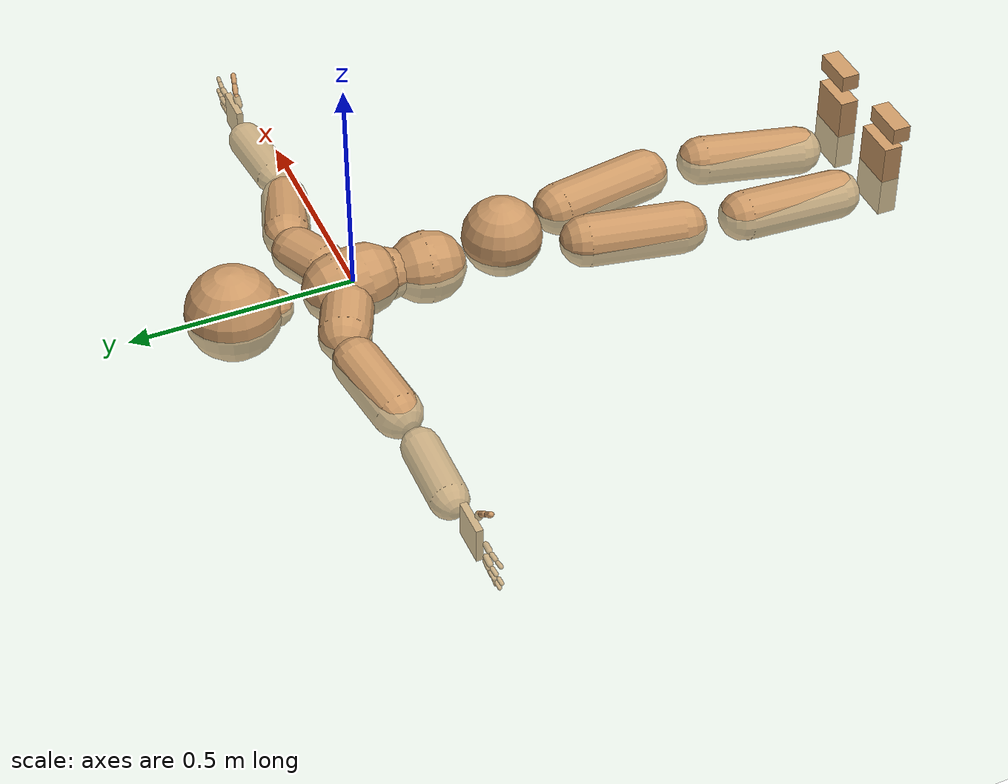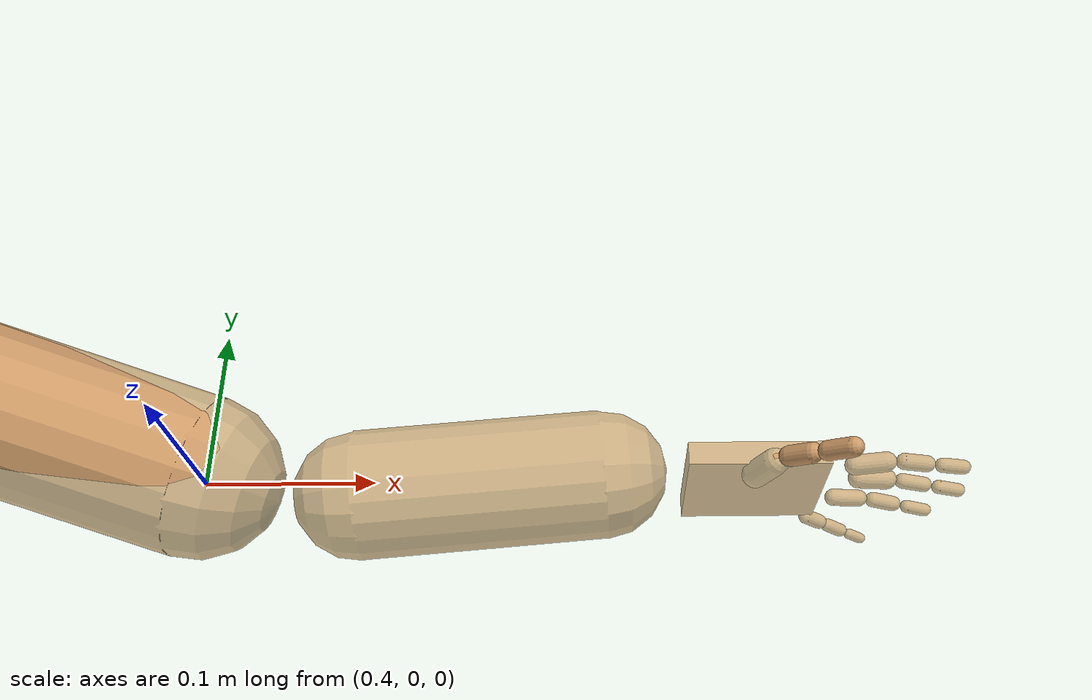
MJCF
<?xml version='1.0' encoding='utf-8'?>
<mujoco model="smplx_mapped_s89">
  <compiler coordinate="local" />
  <default>
    <joint damping="0.0" armature="0.01" stiffness="0.0" limited="true" />
    <geom conaffinity="1" condim="3" contype="7" margin="0.001" rgba="0.8 0.6 .4 1" />
  </default>
  <asset>
    <texture type="skybox" builtin="gradient" rgb1=".4 .5 .6" rgb2="0 0 0" width="100" height="100" />
    <texture builtin="flat" height="1278" mark="cross" markrgb="1 1 1" name="texgeom" random="0.01" rgb1="0.8 0.6 0.4" rgb2="0.8 0.6 0.4" type="cube" width="127" />
    <texture builtin="checker" height="100" name="texplane" rgb1="0 0 0" rgb2="0.8 0.8 0.8" type="2d" width="100" />
    <material name="MatPlane" reflectance="0.5" shininess="1" specular="1" texrepeat="60 60" texture="texplane" />
    <material name="geom" texture="texgeom" texuniform="true" />
  </asset>
  <worldbody>
    <light cutoff="100" diffuse="1 1 1" dir="-0 0 -1.3" directional="true" exponent="1" pos="0 0 1.3" specular=".1 .1 .1" />
    <geom conaffinity="1" condim="3" name="floor" pos="0 0 0" rgba="0.8 0.9 0.8 1" size="100 100 .2" type="plane" material="MatPlane" />
    <body name="Pelvis" pos="0.0009 -0.3469 0.0124">
      <freejoint name="Pelvis" />
      <geom type="sphere" contype="1" conaffinity="1" density="4629.6296296296305" size="0.09" pos="0.0000 0.0000 0.0000" name="Pelvis" />
      <body name="L_Hip" pos="0.0527 -0.0907 -0.0253">
        <joint name="L_Hip_x" type="hinge" pos="0 0 0" axis="1 0 0" stiffness="800" damping="80" armature="0.02" range="-180.00 180.00" />
        <joint name="L_Hip_y" type="hinge" pos="0 0 0" axis="0 1 0" stiffness="800" damping="80" armature="0.02" range="-180.00 180.00" />
        <joint name="L_Hip_z" type="hinge" pos="0 0 0" axis="0 0 1" stiffness="800" damping="80" armature="0.02" range="-180.00 180.00" />
        <geom type="capsule" contype="1" conaffinity="1" density="2040.816327" fromto="0.0136 -0.0751 -0.0012 0.0545 -0.3005 -0.0049" size="0.059" />
        <body name="L_Knee" pos="0.0682 -0.3756 -0.0061">
          <joint name="L_Knee_x" type="hinge" pos="0 0 0" axis="1 0 0" stiffness="800" damping="80" armature="0.02" range="-180.00 180.00" />
          <joint name="L_Knee_y" type="hinge" pos="0 0 0" axis="0 1 0" stiffness="800" damping="80" armature="0.02" range="-180.00 180.00" />
          <joint name="L_Knee_z" type="hinge" pos="0 0 0" axis="0 0 1" stiffness="800" damping="80" armature="0.02" range="-180.00 180.00" />
          <geom type="capsule" contype="1" conaffinity="1" density="1234.567901" fromto="-0.0089 -0.0778 -0.0077 -0.0355 -0.3114 -0.0307" size="0.0564" />
          <body name="L_Ankle" pos="-0.0443 -0.3892 -0.0384">
            <joint name="L_Ankle_x" type="hinge" pos="0 0 0" axis="1 0 0" stiffness="800" damping="80" armature="0.02" range="-180.00 180.00" />
            <joint name="L_Ankle_y" type="hinge" pos="0 0 0" axis="0 1 0" stiffness="800" damping="80" armature="0.02" range="-180.00 180.00" />
            <joint name="L_Ankle_z" type="hinge" pos="0 0 0" axis="0 0 1" stiffness="800" damping="80" armature="0.02" range="-180.00 180.00" />
            <geom type="box" contype="1" conaffinity="1" density="1000" pos="0.0115 -0.0234 0.0566" size="0.0502 0.0216 0.0909" quat="1.0000 0.0000 0.0000 0.0000" />
            <body name="L_Toe" pos="0.0420 -0.0555 0.1292">
              <joint name="L_Toe_x" type="hinge" pos="0 0 0" axis="1 0 0" stiffness="500" damping="50" armature="0.02" range="-180.00 180.00" />
              <joint name="L_Toe_y" type="hinge" pos="0 0 0" axis="0 1 0" stiffness="500" damping="50" armature="0.02" range="-180.00 180.00" />
              <joint name="L_Toe_z" type="hinge" pos="0 0 0" axis="0 0 1" stiffness="500" damping="50" armature="0.02" range="-180.00 180.00" />
              <geom type="box" contype="1" conaffinity="1" density="1000" pos="-0.0115 0.0227 0.0576" size="0.0493 0.0209 0.0194" quat="1.0000 0.0000 0.0000 0.0000" />
            </body>
          </body>
        </body>
      </body>
      <body name="R_Hip" pos="-0.0540 -0.1010 -0.0186">
        <joint name="R_Hip_x" type="hinge" pos="0 0 0" axis="1 0 0" stiffness="800" damping="80" armature="0.02" range="-180.00 180.00" />
        <joint name="R_Hip_y" type="hinge" pos="0 0 0" axis="0 1 0" stiffness="800" damping="80" armature="0.02" range="-180.00 180.00" />
        <joint name="R_Hip_z" type="hinge" pos="0 0 0" axis="0 0 1" stiffness="800" damping="80" armature="0.02" range="-180.00 180.00" />
        <geom type="capsule" contype="1" conaffinity="1" density="2040.816327" fromto="-0.0105 -0.0719 -0.0027 -0.0420 -0.2877 -0.0108" size="0.0588" />
        <body name="R_Knee" pos="-0.0525 -0.3596 -0.0135">
          <joint name="R_Knee_x" type="hinge" pos="0 0 0" axis="1 0 0" stiffness="800" damping="80" armature="0.02" range="-180.00 180.00" />
          <joint name="R_Knee_y" type="hinge" pos="0 0 0" axis="0 1 0" stiffness="800" damping="80" armature="0.02" range="-180.00 180.00" />
          <joint name="R_Knee_z" type="hinge" pos="0 0 0" axis="0 0 1" stiffness="800" damping="80" armature="0.02" range="-180.00 180.00" />
          <geom type="capsule" contype="1" conaffinity="1" density="1234.567901" fromto="0.0035 -0.0804 -0.0075 0.0141 -0.3214 -0.0300" size="0.0564" />
          <body name="R_Ankle" pos="0.0176 -0.4018 -0.0375">
            <joint name="R_Ankle_x" type="hinge" pos="0 0 0" axis="1 0 0" stiffness="800" damping="80" armature="0.02" range="-180.00 180.00" />
            <joint name="R_Ankle_y" type="hinge" pos="0 0 0" axis="0 1 0" stiffness="800" damping="80" armature="0.02" range="-180.00 180.00" />
            <joint name="R_Ankle_z" type="hinge" pos="0 0 0" axis="0 0 1" stiffness="800" damping="80" armature="0.02" range="-180.00 180.00" />
            <geom type="box" contype="1" conaffinity="1" density="1000" pos="-0.0091 -0.0250 0.0535" size="0.0502 0.0216 0.0909" quat="1.0000 0.0000 0.0000 0.0000" />
            <body name="R_Toe" pos="-0.0337 -0.0551 0.1356">
              <joint name="R_Toe_x" type="hinge" pos="0 0 0" axis="1 0 0" stiffness="500" damping="50" armature="0.02" range="-180.00 180.00" />
              <joint name="R_Toe_y" type="hinge" pos="0 0 0" axis="0 1 0" stiffness="500" damping="50" armature="0.02" range="-180.00 180.00" />
              <joint name="R_Toe_z" type="hinge" pos="0 0 0" axis="0 0 1" stiffness="500" damping="50" armature="0.02" range="-180.00 180.00" />
              <geom type="box" contype="1" conaffinity="1" density="1000" pos="0.0091 0.0243 0.0545" size="0.0493 0.0209 0.0194" quat="1.0000 0.0000 0.0000 0.0000" />
            </body>
          </body>
        </body>
      </body>
      <body name="Torso" pos="-0.0012 0.1041 -0.0338">
        <joint name="Torso_x" type="hinge" pos="0 0 0" axis="1 0 0" stiffness="1000" damping="100" armature="0.02" range="-180.00 180.00" />
        <joint name="Torso_y" type="hinge" pos="0 0 0" axis="0 1 0" stiffness="1000" damping="100" armature="0.02" range="-180.00 180.00" />
        <joint name="Torso_z" type="hinge" pos="0 0 0" axis="0 0 1" stiffness="1000" damping="100" armature="0.02" range="-180.00 180.00" />
        <geom type="capsule" contype="1" conaffinity="1" density="1100" fromto="0.0033 0.0645 0.0023 0.0041 0.0789 0.0028" size="0.08" />
        <body name="Spine" pos="0.0074 0.1434 0.0052">
          <joint name="Spine_x" type="hinge" pos="0 0 0" axis="1 0 0" stiffness="1000" damping="100" armature="0.02" range="-180.00 180.00" />
          <joint name="Spine_y" type="hinge" pos="0 0 0" axis="0 1 0" stiffness="1000" damping="100" armature="0.02" range="-180.00 180.00" />
          <joint name="Spine_z" type="hinge" pos="0 0 0" axis="0 0 1" stiffness="1000" damping="100" armature="0.02" range="-180.00 180.00" />
          <geom type="capsule" contype="1" conaffinity="1" density="1100" fromto="-0.0031 0.0246 0.0079 -0.0038 0.0301 0.0096" size="0.06" />
          <body name="Chest" pos="-0.0069 0.0547 0.0175">
            <joint name="Chest_x" type="hinge" pos="0 0 0" axis="1 0 0" stiffness="1000" damping="100" armature="0.02" range="-180.00 180.00" />
            <joint name="Chest_y" type="hinge" pos="0 0 0" axis="0 1 0" stiffness="1000" damping="100" armature="0.02" range="-180.00 180.00" />
            <joint name="Chest_z" type="hinge" pos="0 0 0" axis="0 0 1" stiffness="1000" damping="100" armature="0.02" range="-180.00 180.00" />
            <geom type="capsule" contype="1" conaffinity="1" density="1100" fromto="-0.0007 0.0200 -0.0022 -0.0027 0.0800 -0.0086" size="0.08" />
            <body name="Neck" pos="-0.0084 0.1556 -0.0218">
              <joint name="Neck_x" type="hinge" pos="0 0 0" axis="1 0 0" stiffness="500" damping="50" armature="0.02" range="-180.00 180.00" />
              <joint name="Neck_y" type="hinge" pos="0 0 0" axis="0 1 0" stiffness="500" damping="50" armature="0.02" range="-180.00 180.00" />
              <joint name="Neck_z" type="hinge" pos="0 0 0" axis="0 0 1" stiffness="500" damping="50" armature="0.02" range="-180.00 180.00" />
              <geom type="capsule" contype="1" conaffinity="1" density="1000" fromto="0.0102 0.0699 0.0054 0.0125 0.0855 0.0066" size="0.0437" />
              <body name="Head" pos="0.0227 0.1554 0.0119">
                <joint name="Head_x" type="hinge" pos="0 0 0" axis="1 0 0" stiffness="500" damping="50" armature="0.02" range="-180.00 180.00" />
                <joint name="Head_y" type="hinge" pos="0 0 0" axis="0 1 0" stiffness="500" damping="50" armature="0.02" range="-180.00 180.00" />
                <joint name="Head_z" type="hinge" pos="0 0 0" axis="0 0 1" stiffness="500" damping="50" armature="0.02" range="-180.00 180.00" />
                <geom type="sphere" contype="1" conaffinity="1" density="1000" size="0.1054" pos="0.0000 0.0000 0.0000" name="Head" />
              </body>
            </body>
            <body name="L_Thorax" pos="0.0418 0.0721 -0.0035">
              <joint name="L_Thorax_x" type="hinge" pos="0 0 0" axis="1 0 0" stiffness="500" damping="50" armature="0.02" range="-180.00 180.00" />
              <joint name="L_Thorax_y" type="hinge" pos="0 0 0" axis="0 1 0" stiffness="500" damping="50" armature="0.02" range="-180.00 180.00" />
              <joint name="L_Thorax_z" type="hinge" pos="0 0 0" axis="0 0 1" stiffness="500" damping="50" armature="0.02" range="-180.00 180.00" />
              <geom type="capsule" contype="1" conaffinity="1" density="1000" fromto="0.0276 0.0117 -0.0023 0.1104 0.0469 -0.0093" size="0.0564" />
              <body name="L_Shoulder" pos="0.1379 0.0587 -0.0116">
                <joint name="L_Shoulder_x" type="hinge" pos="0 0 0" axis="1 0 0" stiffness="500" damping="50" armature="0.02" range="-180.00 180.00" />
                <joint name="L_Shoulder_y" type="hinge" pos="0 0 0" axis="0 1 0" stiffness="500" damping="50" armature="0.02" range="-180.00 180.00" />
                <joint name="L_Shoulder_z" type="hinge" pos="0 0 0" axis="0 0 1" stiffness="500" damping="50" armature="0.02" range="-180.00 180.00" />
                <geom type="capsule" contype="1" conaffinity="1" density="1000" fromto="0.0493 -0.0149 -0.0081 0.1972 -0.0595 -0.0322" size="0.0533" />
                <body name="L_Elbow" pos="0.2466 -0.0744 -0.0403">
                  <joint name="L_Elbow_x" type="hinge" pos="0 0 0" axis="1 0 0" stiffness="500" damping="50" armature="0.02" range="-180.00 180.00" />
                  <joint name="L_Elbow_y" type="hinge" pos="0 0 0" axis="0 1 0" stiffness="500" damping="50" armature="0.02" range="-180.00 180.00" />
                  <joint name="L_Elbow_z" type="hinge" pos="0 0 0" axis="0 0 1" stiffness="500" damping="50" armature="0.02" range="-180.00 180.00" />
                  <geom type="capsule" contype="1" conaffinity="1" density="1000" fromto="0.0520 0.0046 -0.0005 0.2079 0.0185 -0.0018" size="0.0418" />
                  <body name="L_Wrist" pos="0.2599 0.0231 -0.0023">
                    <joint name="L_Wrist_x" type="hinge" pos="0 0 0" axis="1 0 0" stiffness="300" damping="30" armature="0.02" range="-180.0000 180.0000" />
                    <joint name="L_Wrist_y" type="hinge" pos="0 0 0" axis="0 1 0" stiffness="300" damping="30" armature="0.02" range="-180.0000 180.0000" />
                    <joint name="L_Wrist_z" type="hinge" pos="0 0 0" axis="0 0 1" stiffness="300" damping="30" armature="0.02" range="-180.0000 180.0000" />
                    <geom type="box" contype="1" conaffinity="1" density="1000" pos="0.0456 -0.0084 -0.0022" size="0.0444 0.0076 0.0414" quat="1.0000 0.0000 0.0000 0.0000" />
                    <body name="L_Index1" pos="0.1009 -0.0092 0.0204">
                      <joint name="L_Index1_x" type="hinge" pos="0 0 0" axis="1 0 0" stiffness="100" damping="10" armature="0.02" range="-5.6250 5.6250" />
                      <joint name="L_Index1_y" type="hinge" pos="0 0 0" axis="0 1 0" stiffness="100" damping="10" armature="0.02" range="-5.6250 5.6250" />
                      <joint name="L_Index1_z" type="hinge" pos="0 0 0" axis="0 0 1" stiffness="100" damping="10" armature="0.02" range="-55.6250 55.6250" />
                      <geom type="capsule" contype="1" conaffinity="1" density="1000" fromto="0.0065 0.0003 0.0007 0.0261 0.0013 0.0028" size="0.0065" />
                      <body name="L_Index2" pos="0.0327 0.0016 0.0035">
                        <joint name="L_Index2_x" type="hinge" pos="0 0 0" axis="1 0 0" stiffness="100" damping="10" armature="0.02" range="-5.6250 5.6250" />
                        <joint name="L_Index2_y" type="hinge" pos="0 0 0" axis="0 1 0" stiffness="100" damping="10" armature="0.02" range="-5.6250 5.6250" />
                        <joint name="L_Index2_z" type="hinge" pos="0 0 0" axis="0 0 1" stiffness="100" damping="10" armature="0.02" range="-55.6250 55.6250" />
                        <geom type="capsule" contype="1" conaffinity="1" density="1000" fromto="0.0046 -0.0005 -0.0000 0.0185 -0.0021 -0.0002" size="0.0053" />
                        <body name="L_Index3" pos="0.0231 -0.0026 -0.0002">
                          <joint name="L_Index3_x" type="hinge" pos="0 0 0" axis="1 0 0" stiffness="100" damping="10" armature="0.02" range="-5.6250 5.6250" />
                          <joint name="L_Index3_y" type="hinge" pos="0 0 0" axis="0 1 0" stiffness="100" damping="10" armature="0.02" range="-5.6250 5.6250" />
                          <joint name="L_Index3_z" type="hinge" pos="0 0 0" axis="0 0 1" stiffness="100" damping="10" armature="0.02" range="-90.0000 5.6250" />
                          <geom type="capsule" contype="1" conaffinity="1" density="1000" fromto="0.0052 -0.0006 -0.0001 0.0179 -0.0020 -0.0002" size="0.0047" />
                        </body>
                      </body>
                    </body>
                    <body name="L_Middle1" pos="0.1088 -0.0065 -0.0037">
                      <joint name="L_Middle1_x" type="hinge" pos="0 0 0" axis="1 0 0" stiffness="100" damping="10" armature="0.02" range="-5.6250 5.6250" />
                      <joint name="L_Middle1_y" type="hinge" pos="0 0 0" axis="0 1 0" stiffness="100" damping="10" armature="0.02" range="-5.6250 5.6250" />
                      <joint name="L_Middle1_z" type="hinge" pos="0 0 0" axis="0 0 1" stiffness="100" damping="10" armature="0.02" range="-55.6250 55.6250" />
                      <geom type="capsule" contype="1" conaffinity="1" density="1000" fromto="0.0062 0.0001 -0.0009 0.0249 0.0003 -0.0034" size="0.0067" />
                      <body name="L_Middle2" pos="0.0312 0.0003 -0.0043">
                        <joint name="L_Middle2_x" type="hinge" pos="0 0 0" axis="1 0 0" stiffness="100" damping="10" armature="0.02" range="-5.6250 5.6250" />
                        <joint name="L_Middle2_y" type="hinge" pos="0 0 0" axis="0 1 0" stiffness="100" damping="10" armature="0.02" range="-5.6250 5.6250" />
                        <joint name="L_Middle2_z" type="hinge" pos="0 0 0" axis="0 0 1" stiffness="100" damping="10" armature="0.02" range="-55.6250 55.6250" />
                        <geom type="capsule" contype="1" conaffinity="1" density="1000" fromto="0.0048 -0.0005 -0.0009 0.0191 -0.0020 -0.0034" size="0.0050" />
                        <body name="L_Middle3" pos="0.0239 -0.0025 -0.0043">
                          <joint name="L_Middle3_x" type="hinge" pos="0 0 0" axis="1 0 0" stiffness="100" damping="10" armature="0.02" range="-5.6250 5.6250" />
                          <joint name="L_Middle3_y" type="hinge" pos="0 0 0" axis="0 1 0" stiffness="100" damping="10" armature="0.02" range="-5.6250 5.6250" />
                          <joint name="L_Middle3_z" type="hinge" pos="0 0 0" axis="0 0 1" stiffness="100" damping="10" armature="0.02" range="-90.0000 5.6250" />
                          <geom type="capsule" contype="1" conaffinity="1" density="1000" fromto="0.0053 -0.0006 -0.0009 0.0186 -0.0019 -0.0033" size="0.0045" />
                        </body>
                      </body>
                    </body>
                    <body name="L_Pinky1" pos="0.0835 -0.0149 -0.0450">
                      <joint name="L_Pinky1_x" type="hinge" pos="0 0 0" axis="1 0 0" stiffness="100" damping="10" armature="0.02" range="-5.6250 5.6250" />
                      <joint name="L_Pinky1_y" type="hinge" pos="0 0 0" axis="0 1 0" stiffness="100" damping="10" armature="0.02" range="-5.6250 5.6250" />
                      <joint name="L_Pinky1_z" type="hinge" pos="0 0 0" axis="0 0 1" stiffness="100" damping="10" armature="0.02" range="-55.6250 55.6250" />
                      <geom type="capsule" contype="1" conaffinity="1" density="1000" fromto="0.0033 -0.0004 -0.0024 0.0133 -0.0014 -0.0094" size="0.0050" />
                      <body name="L_Pinky2" pos="0.0166 -0.0018 -0.0118">
                        <joint name="L_Pinky2_x" type="hinge" pos="0 0 0" axis="1 0 0" stiffness="100" damping="10" armature="0.02" range="-5.6250 5.6250" />
                        <joint name="L_Pinky2_y" type="hinge" pos="0 0 0" axis="0 1 0" stiffness="100" damping="10" armature="0.02" range="-5.6250 5.6250" />
                        <joint name="L_Pinky2_z" type="hinge" pos="0 0 0" axis="0 0 1" stiffness="100" damping="10" armature="0.02" range="-55.6250 55.6250" />
                        <geom type="capsule" contype="1" conaffinity="1" density="1000" fromto="0.0033 -0.0004 -0.0022 0.0131 -0.0016 -0.0088" size="0.0045" />
                        <body name="L_Pinky3" pos="0.0163 -0.0020 -0.0111">
                          <joint name="L_Pinky3_x" type="hinge" pos="0 0 0" axis="1 0 0" stiffness="100" damping="10" armature="0.02" range="-5.6250 5.6250" />
                          <joint name="L_Pinky3_y" type="hinge" pos="0 0 0" axis="0 1 0" stiffness="100" damping="10" armature="0.02" range="-5.6250 5.6250" />
                          <joint name="L_Pinky3_z" type="hinge" pos="0 0 0" axis="0 0 1" stiffness="100" damping="10" armature="0.02" range="-90.0000 5.6250" />
                          <geom type="capsule" contype="1" conaffinity="1" density="1000" fromto="0.0038 -0.0005 -0.0025 0.0126 -0.0015 -0.0085" size="0.0036" />
                        </body>
                      </body>
                    </body>
                    <body name="L_Ring1" pos="0.0968 -0.0094 -0.0278">
                      <joint name="L_Ring1_x" type="hinge" pos="0 0 0" axis="1 0 0" stiffness="100" damping="10" armature="0.02" range="-5.6250 5.6250" />
                      <joint name="L_Ring1_y" type="hinge" pos="0 0 0" axis="0 1 0" stiffness="100" damping="10" armature="0.02" range="-5.6250 5.6250" />
                      <joint name="L_Ring1_z" type="hinge" pos="0 0 0" axis="0 0 1" stiffness="100" damping="10" armature="0.02" range="-55.6250 55.6250" />
                      <geom type="capsule" contype="1" conaffinity="1" density="1000" fromto="0.0058 0.0001 -0.0010 0.0232 0.0005 -0.0039" size="0.0057" />
                      <body name="L_Ring2" pos="0.0289 0.0007 -0.0048">
                        <joint name="L_Ring2_x" type="hinge" pos="0 0 0" axis="1 0 0" stiffness="100" damping="10" armature="0.02" range="-5.6250 5.6250" />
                        <joint name="L_Ring2_y" type="hinge" pos="0 0 0" axis="0 1 0" stiffness="100" damping="10" armature="0.02" range="-5.6250 5.6250" />
                        <joint name="L_Ring2_z" type="hinge" pos="0 0 0" axis="0 0 1" stiffness="100" damping="10" armature="0.02" range="-55.6250 55.6250" />
                        <geom type="capsule" contype="1" conaffinity="1" density="1000" fromto="0.0047 -0.0004 -0.0013 0.0188 -0.0017 -0.0053" size="0.0051" />
                        <body name="L_Ring3" pos="0.0235 -0.0022 -0.0066">
                          <joint name="L_Ring3_x" type="hinge" pos="0 0 0" axis="1 0 0" stiffness="100" damping="10" armature="0.02" range="-5.6250 5.6250" />
                          <joint name="L_Ring3_y" type="hinge" pos="0 0 0" axis="0 1 0" stiffness="100" damping="10" armature="0.02" range="-5.6250 5.6250" />
                          <joint name="L_Ring3_z" type="hinge" pos="0 0 0" axis="0 0 1" stiffness="100" damping="10" armature="0.02" range="-90.0000 5.6250" />
                          <geom type="capsule" contype="1" conaffinity="1" density="1000" fromto="0.0053 -0.0005 -0.0015 0.0182 -0.0017 -0.0051" size="0.0043" />
                        </body>
                      </body>
                    </body>
                    <body name="L_Thumb1" pos="0.0392 -0.0200 0.0265">
                      <joint name="L_Thumb1_x" type="hinge" pos="0 0 0" axis="1 0 0" stiffness="100" damping="10" armature="0.02" range="-55.6250 55.6250" />
                      <joint name="L_Thumb1_y" type="hinge" pos="0 0 0" axis="0 1 0" stiffness="100" damping="10" armature="0.02" range="-55.6250 55.6250" />
                      <joint name="L_Thumb1_z" type="hinge" pos="0 0 0" axis="0 0 1" stiffness="100" damping="10" armature="0.02" range="-55.6250 55.6250" />
                      <geom type="capsule" contype="1" conaffinity="1" density="1000" fromto="0.0033 0.0003 0.0053 0.0133 0.0013 0.0212" size="0.0086" />
                      <body name="L_Thumb2" pos="0.0166 0.0017 0.0265">
                        <joint name="L_Thumb2_x" type="hinge" pos="0 0 0" axis="1 0 0" stiffness="100" damping="10" armature="0.02" range="-5.6250 5.6250" />
                        <joint name="L_Thumb2_y" type="hinge" pos="0 0 0" axis="0 1 0" stiffness="100" damping="10" armature="0.02" range="-5.6250 5.6250" />
                        <joint name="L_Thumb2_z" type="hinge" pos="0 0 0" axis="0 0 1" stiffness="100" damping="10" armature="0.02" range="-5.6250 5.6250" />
                        <geom type="capsule" contype="1" conaffinity="1" density="1000" fromto="0.0041 -0.0009 0.0033 0.0162 -0.0036 0.0133" size="0.0065" />
                        <body name="L_Thumb3" pos="0.0203 -0.0045 0.0166">
                          <joint name="L_Thumb3_x" type="hinge" pos="0 0 0" axis="1 0 0" stiffness="100" damping="10" armature="0.02" range="-5.6250 5.6250" />
                          <joint name="L_Thumb3_y" type="hinge" pos="0 0 0" axis="0 1 0" stiffness="100" damping="10" armature="0.02" range="-5.6250 5.6250" />
                          <joint name="L_Thumb3_z" type="hinge" pos="0 0 0" axis="0 0 1" stiffness="100" damping="10" armature="0.02" range="-90.0000 5.6250" />
                          <geom type="capsule" contype="1" conaffinity="1" density="1000" fromto="0.0038 -0.0009 0.0031 0.0165 -0.0037 0.0135" size="0.0062" />
                        </body>
                      </body>
                    </body>
                  </body>
                </body>
              </body>
            </body>
            <body name="R_Thorax" pos="-0.0435 0.0722 -0.0069">
              <joint name="R_Thorax_x" type="hinge" pos="0 0 0" axis="1 0 0" stiffness="500" damping="50" armature="0.02" range="-180.00 180.00" />
              <joint name="R_Thorax_y" type="hinge" pos="0 0 0" axis="0 1 0" stiffness="500" damping="50" armature="0.02" range="-180.00 180.00" />
              <joint name="R_Thorax_z" type="hinge" pos="0 0 0" axis="0 0 1" stiffness="500" damping="50" armature="0.02" range="-180.00 180.00" />
              <geom type="capsule" contype="1" conaffinity="1" density="1000" fromto="-0.0256 0.0115 -0.0015 -0.1023 0.0461 -0.0060" size="0.0576" />
              <body name="R_Shoulder" pos="-0.1279 0.0576 -0.0075">
                <joint name="R_Shoulder_x" type="hinge" pos="0 0 0" axis="1 0 0" stiffness="500" damping="50" armature="0.02" range="-180.00 180.00" />
                <joint name="R_Shoulder_y" type="hinge" pos="0 0 0" axis="0 1 0" stiffness="500" damping="50" armature="0.02" range="-180.00 180.00" />
                <joint name="R_Shoulder_z" type="hinge" pos="0 0 0" axis="0 0 1" stiffness="500" damping="50" armature="0.02" range="-180.00 180.00" />
                <geom type="capsule" contype="1" conaffinity="1" density="1000" fromto="-0.0527 -0.0093 -0.0060 -0.2108 -0.0372 -0.0240" size="0.0538" />
                <body name="R_Elbow" pos="-0.2635 -0.0465 -0.0300">
                  <joint name="R_Elbow_x" type="hinge" pos="0 0 0" axis="1 0 0" stiffness="500" damping="50" armature="0.02" range="-180.00 180.00" />
                  <joint name="R_Elbow_y" type="hinge" pos="0 0 0" axis="0 1 0" stiffness="500" damping="50" armature="0.02" range="-180.00 180.00" />
                  <joint name="R_Elbow_z" type="hinge" pos="0 0 0" axis="0 0 1" stiffness="500" damping="50" armature="0.02" range="-180.00 180.00" />
                  <geom type="capsule" contype="1" conaffinity="1" density="1000" fromto="-0.0504 -0.0001 -0.0025 -0.2016 -0.0003 -0.0099" size="0.042" />
                  <body name="R_Wrist" pos="-0.2520 -0.0004 -0.0124">
                    <joint name="R_Wrist_x" type="hinge" pos="0 0 0" axis="1 0 0" stiffness="300" damping="30" armature="0.02" range="-180.0000 180.0000" />
                    <joint name="R_Wrist_y" type="hinge" pos="0 0 0" axis="0 1 0" stiffness="300" damping="30" armature="0.02" range="-180.0000 180.0000" />
                    <joint name="R_Wrist_z" type="hinge" pos="0 0 0" axis="0 0 1" stiffness="300" damping="30" armature="0.02" range="-180.0000 180.0000" />
                    <geom type="box" contype="1" conaffinity="1" density="1000" pos="-0.0449 -0.0080 -0.0014" size="0.0416 0.0078 0.0414" quat="1.0000 0.0000 0.0000 0.0000" />
                    <body name="R_Index1" pos="-0.1005 -0.0126 0.0195">
                      <joint name="R_Index1_x" type="hinge" pos="0 0 0" axis="1 0 0" stiffness="100" damping="10" armature="0.02" range="-5.6250 5.6250" />
                      <joint name="R_Index1_y" type="hinge" pos="0 0 0" axis="0 1 0" stiffness="100" damping="10" armature="0.02" range="-5.6250 5.6250" />
                      <joint name="R_Index1_z" type="hinge" pos="0 0 0" axis="0 0 1" stiffness="100" damping="10" armature="0.02" range="-55.6250 55.6250" />
                      <geom type="capsule" contype="1" conaffinity="1" density="1000" fromto="-0.0065 0.0003 0.0007 -0.0261 0.0013 0.0028" size="0.0065" />
                      <body name="R_Index2" pos="-0.0327 0.0016 0.0035">
                        <joint name="R_Index2_x" type="hinge" pos="0 0 0" axis="1 0 0" stiffness="100" damping="10" armature="0.02" range="-5.6250 5.6250" />
                        <joint name="R_Index2_y" type="hinge" pos="0 0 0" axis="0 1 0" stiffness="100" damping="10" armature="0.02" range="-5.6250 5.6250" />
                        <joint name="R_Index2_z" type="hinge" pos="0 0 0" axis="0 0 1" stiffness="100" damping="10" armature="0.02" range="-55.6250 55.6250" />
                        <geom type="capsule" contype="1" conaffinity="1" density="1000" fromto="-0.0046 -0.0005 -0.0001 -0.0185 -0.0021 -0.0002" size="0.0053" />
                        <body name="R_Index3" pos="-0.0231 -0.0026 -0.0003">
                          <joint name="R_Index3_x" type="hinge" pos="0 0 0" axis="1 0 0" stiffness="100" damping="10" armature="0.02" range="-5.6250 5.6250" />
                          <joint name="R_Index3_y" type="hinge" pos="0 0 0" axis="0 1 0" stiffness="100" damping="10" armature="0.02" range="-5.6250 5.6250" />
                          <joint name="R_Index3_z" type="hinge" pos="0 0 0" axis="0 0 1" stiffness="100" damping="10" armature="0.02" range="-5.6250 90.0000" />
                          <geom type="capsule" contype="1" conaffinity="1" density="1000" fromto="-0.0056 -0.0006 -0.0001 -0.0175 -0.0020 -0.0002" size="0.0048" />
                        </body>
                      </body>
                    </body>
                    <body name="R_Middle1" pos="-0.1084 -0.0099 -0.0046">
                      <joint name="R_Middle1_x" type="hinge" pos="0 0 0" axis="1 0 0" stiffness="100" damping="10" armature="0.02" range="-5.6250 5.6250" />
                      <joint name="R_Middle1_y" type="hinge" pos="0 0 0" axis="0 1 0" stiffness="100" damping="10" armature="0.02" range="-5.6250 5.6250" />
                      <joint name="R_Middle1_z" type="hinge" pos="0 0 0" axis="0 0 1" stiffness="100" damping="10" armature="0.02" range="-55.6250 55.6250" />
                      <geom type="capsule" contype="1" conaffinity="1" density="1000" fromto="-0.0062 0.0001 -0.0009 -0.0249 0.0003 -0.0034" size="0.0067" />
                      <body name="R_Middle2" pos="-0.0312 0.0003 -0.0043">
                        <joint name="R_Middle2_x" type="hinge" pos="0 0 0" axis="1 0 0" stiffness="100" damping="10" armature="0.02" range="-5.6250 5.6250" />
                        <joint name="R_Middle2_y" type="hinge" pos="0 0 0" axis="0 1 0" stiffness="100" damping="10" armature="0.02" range="-5.6250 5.6250" />
                        <joint name="R_Middle2_z" type="hinge" pos="0 0 0" axis="0 0 1" stiffness="100" damping="10" armature="0.02" range="-55.6250 55.6250" />
                        <geom type="capsule" contype="1" conaffinity="1" density="1000" fromto="-0.0048 -0.0005 -0.0009 -0.0191 -0.0020 -0.0034" size="0.0050" />
                        <body name="R_Middle3" pos="-0.0239 -0.0025 -0.0043">
                          <joint name="R_Middle3_x" type="hinge" pos="0 0 0" axis="1 0 0" stiffness="100" damping="10" armature="0.02" range="-5.6250 5.6250" />
                          <joint name="R_Middle3_y" type="hinge" pos="0 0 0" axis="0 1 0" stiffness="100" damping="10" armature="0.02" range="-5.6250 5.6250" />
                          <joint name="R_Middle3_z" type="hinge" pos="0 0 0" axis="0 0 1" stiffness="100" damping="10" armature="0.02" range="-5.6250 90.0000" />
                          <geom type="capsule" contype="1" conaffinity="1" density="1000" fromto="-0.0056 -0.0006 -0.0010 -0.0182 -0.0019 -0.0033" size="0.0045" />
                        </body>
                      </body>
                    </body>
                    <body name="R_Pinky1" pos="-0.0832 -0.0184 -0.0460">
                      <joint name="R_Pinky1_x" type="hinge" pos="0 0 0" axis="1 0 0" stiffness="100" damping="10" armature="0.02" range="-5.6250 5.6250" />
                      <joint name="R_Pinky1_y" type="hinge" pos="0 0 0" axis="0 1 0" stiffness="100" damping="10" armature="0.02" range="-5.6250 5.6250" />
                      <joint name="R_Pinky1_z" type="hinge" pos="0 0 0" axis="0 0 1" stiffness="100" damping="10" armature="0.02" range="-55.6250 55.6250" />
                      <geom type="capsule" contype="1" conaffinity="1" density="1000" fromto="-0.0033 -0.0004 -0.0024 -0.0133 -0.0014 -0.0094" size="0.0050" />
                      <body name="R_Pinky2" pos="-0.0166 -0.0018 -0.0118">
                        <joint name="R_Pinky2_x" type="hinge" pos="0 0 0" axis="1 0 0" stiffness="100" damping="10" armature="0.02" range="-5.6250 5.6250" />
                        <joint name="R_Pinky2_y" type="hinge" pos="0 0 0" axis="0 1 0" stiffness="100" damping="10" armature="0.02" range="-5.6250 5.6250" />
                        <joint name="R_Pinky2_z" type="hinge" pos="0 0 0" axis="0 0 1" stiffness="100" damping="10" armature="0.02" range="-55.6250 55.6250" />
                        <geom type="capsule" contype="1" conaffinity="1" density="1000" fromto="-0.0033 -0.0004 -0.0022 -0.0131 -0.0016 -0.0088" size="0.0045" />
                        <body name="R_Pinky3" pos="-0.0163 -0.0020 -0.0111">
                          <joint name="R_Pinky3_x" type="hinge" pos="0 0 0" axis="1 0 0" stiffness="100" damping="10" armature="0.02" range="-5.6250 5.6250" />
                          <joint name="R_Pinky3_y" type="hinge" pos="0 0 0" axis="0 1 0" stiffness="100" damping="10" armature="0.02" range="-5.6250 5.6250" />
                          <joint name="R_Pinky3_z" type="hinge" pos="0 0 0" axis="0 0 1" stiffness="100" damping="10" armature="0.02" range="-5.6250 90.0000" />
                          <geom type="capsule" contype="1" conaffinity="1" density="1000" fromto="-0.0040 -0.0005 -0.0027 -0.0123 -0.0015 -0.0084" size="0.0036" />
                        </body>
                      </body>
                    </body>
                    <body name="R_Ring1" pos="-0.0965 -0.0128 -0.0287">
                      <joint name="R_Ring1_x" type="hinge" pos="0 0 0" axis="1 0 0" stiffness="100" damping="10" armature="0.02" range="-5.6250 5.6250" />
                      <joint name="R_Ring1_y" type="hinge" pos="0 0 0" axis="0 1 0" stiffness="100" damping="10" armature="0.02" range="-5.6250 5.6250" />
                      <joint name="R_Ring1_z" type="hinge" pos="0 0 0" axis="0 0 1" stiffness="100" damping="10" armature="0.02" range="-55.6250 55.6250" />
                      <geom type="capsule" contype="1" conaffinity="1" density="1000" fromto="-0.0058 0.0001 -0.0010 -0.0232 0.0005 -0.0039" size="0.0057" />
                      <body name="R_Ring2" pos="-0.0289 0.0007 -0.0048">
                        <joint name="R_Ring2_x" type="hinge" pos="0 0 0" axis="1 0 0" stiffness="100" damping="10" armature="0.02" range="-5.6250 5.6250" />
                        <joint name="R_Ring2_y" type="hinge" pos="0 0 0" axis="0 1 0" stiffness="100" damping="10" armature="0.02" range="-5.6250 5.6250" />
                        <joint name="R_Ring2_z" type="hinge" pos="0 0 0" axis="0 0 1" stiffness="100" damping="10" armature="0.02" range="-55.6250 55.6250" />
                        <geom type="capsule" contype="1" conaffinity="1" density="1000" fromto="-0.0047 -0.0004 -0.0013 -0.0188 -0.0017 -0.0053" size="0.0051" />
                        <body name="R_Ring3" pos="-0.0235 -0.0022 -0.0066">
                          <joint name="R_Ring3_x" type="hinge" pos="0 0 0" axis="1 0 0" stiffness="100" damping="10" armature="0.02" range="-5.6250 5.6250" />
                          <joint name="R_Ring3_y" type="hinge" pos="0 0 0" axis="0 1 0" stiffness="100" damping="10" armature="0.02" range="-5.6250 5.6250" />
                          <joint name="R_Ring3_z" type="hinge" pos="0 0 0" axis="0 0 1" stiffness="100" damping="10" armature="0.02" range="-5.6250 90.0000" />
                          <geom type="capsule" contype="1" conaffinity="1" density="1000" fromto="-0.0055 -0.0005 -0.0015 -0.0179 -0.0017 -0.0050" size="0.0043" />
                        </body>
                      </body>
                    </body>
                    <body name="R_Thumb1" pos="-0.0388 -0.0235 0.0256">
                      <joint name="R_Thumb1_x" type="hinge" pos="0 0 0" axis="1 0 0" stiffness="100" damping="10" armature="0.02" range="-55.6250 55.6250" />
                      <joint name="R_Thumb1_y" type="hinge" pos="0 0 0" axis="0 1 0" stiffness="100" damping="10" armature="0.02" range="-55.6250 55.6250" />
                      <joint name="R_Thumb1_z" type="hinge" pos="0 0 0" axis="0 0 1" stiffness="100" damping="10" armature="0.02" range="-55.6250 55.6250" />
                      <geom type="capsule" contype="1" conaffinity="1" density="1000" fromto="-0.0033 0.0003 0.0053 -0.0133 0.0013 0.0212" size="0.0086" />
                      <body name="R_Thumb2" pos="-0.0166 0.0017 0.0265">
                        <joint name="R_Thumb2_x" type="hinge" pos="0 0 0" axis="1 0 0" stiffness="100" damping="10" armature="0.02" range="-5.6250 5.6250" />
                        <joint name="R_Thumb2_y" type="hinge" pos="0 0 0" axis="0 1 0" stiffness="100" damping="10" armature="0.02" range="-5.6250 5.6250" />
                        <joint name="R_Thumb2_z" type="hinge" pos="0 0 0" axis="0 0 1" stiffness="100" damping="10" armature="0.02" range="-5.6250 5.6250" />
                        <geom type="capsule" contype="1" conaffinity="1" density="1000" fromto="-0.0041 -0.0009 0.0033 -0.0162 -0.0036 0.0133" size="0.0065" />
                        <body name="R_Thumb3" pos="-0.0203 -0.0045 0.0166">
                          <joint name="R_Thumb3_x" type="hinge" pos="0 0 0" axis="1 0 0" stiffness="100" damping="10" armature="0.02" range="-5.6250 5.6250" />
                          <joint name="R_Thumb3_y" type="hinge" pos="0 0 0" axis="0 1 0" stiffness="100" damping="10" armature="0.02" range="-5.6250 5.6250" />
                          <joint name="R_Thumb3_z" type="hinge" pos="0 0 0" axis="0 0 1" stiffness="100" damping="10" armature="0.02" range="-5.6250 90.0000" />
                          <geom type="capsule" contype="1" conaffinity="1" density="1000" fromto="-0.0046 -0.0010 0.0038 -0.0157 -0.0035 0.0128" size="0.0064" />
                        </body>
                      </body>
                    </body>
                  </body>
                </body>
              </body>
            </body>
          </body>
        </body>
      </body>
    </body>
  </worldbody>
  <actuator>
    <motor name="L_Hip_x" joint="L_Hip_x" gear="1" />
    <motor name="L_Hip_y" joint="L_Hip_y" gear="1" />
    <motor name="L_Hip_z" joint="L_Hip_z" gear="1" />
    <motor name="L_Knee_x" joint="L_Knee_x" gear="1" />
    <motor name="L_Knee_y" joint="L_Knee_y" gear="1" />
    <motor name="L_Knee_z" joint="L_Knee_z" gear="1" />
    <motor name="L_Ankle_x" joint="L_Ankle_x" gear="1" />
    <motor name="L_Ankle_y" joint="L_Ankle_y" gear="1" />
    <motor name="L_Ankle_z" joint="L_Ankle_z" gear="1" />
    <motor name="L_Toe_x" joint="L_Toe_x" gear="1" />
    <motor name="L_Toe_y" joint="L_Toe_y" gear="1" />
    <motor name="L_Toe_z" joint="L_Toe_z" gear="1" />
    <motor name="R_Hip_x" joint="R_Hip_x" gear="1" />
    <motor name="R_Hip_y" joint="R_Hip_y" gear="1" />
    <motor name="R_Hip_z" joint="R_Hip_z" gear="1" />
    <motor name="R_Knee_x" joint="R_Knee_x" gear="1" />
    <motor name="R_Knee_y" joint="R_Knee_y" gear="1" />
    <motor name="R_Knee_z" joint="R_Knee_z" gear="1" />
    <motor name="R_Ankle_x" joint="R_Ankle_x" gear="1" />
    <motor name="R_Ankle_y" joint="R_Ankle_y" gear="1" />
    <motor name="R_Ankle_z" joint="R_Ankle_z" gear="1" />
    <motor name="R_Toe_x" joint="R_Toe_x" gear="1" />
    <motor name="R_Toe_y" joint="R_Toe_y" gear="1" />
    <motor name="R_Toe_z" joint="R_Toe_z" gear="1" />
    <motor name="Torso_x" joint="Torso_x" gear="1" />
    <motor name="Torso_y" joint="Torso_y" gear="1" />
    <motor name="Torso_z" joint="Torso_z" gear="1" />
    <motor name="Spine_x" joint="Spine_x" gear="1" />
    <motor name="Spine_y" joint="Spine_y" gear="1" />
    <motor name="Spine_z" joint="Spine_z" gear="1" />
    <motor name="Chest_x" joint="Chest_x" gear="1" />
    <motor name="Chest_y" joint="Chest_y" gear="1" />
    <motor name="Chest_z" joint="Chest_z" gear="1" />
    <motor name="Neck_x" joint="Neck_x" gear="1" />
    <motor name="Neck_y" joint="Neck_y" gear="1" />
    <motor name="Neck_z" joint="Neck_z" gear="1" />
    <motor name="Head_x" joint="Head_x" gear="1" />
    <motor name="Head_y" joint="Head_y" gear="1" />
    <motor name="Head_z" joint="Head_z" gear="1" />
    <motor name="L_Thorax_x" joint="L_Thorax_x" gear="1" />
    <motor name="L_Thorax_y" joint="L_Thorax_y" gear="1" />
    <motor name="L_Thorax_z" joint="L_Thorax_z" gear="1" />
    <motor name="L_Shoulder_x" joint="L_Shoulder_x" gear="1" />
    <motor name="L_Shoulder_y" joint="L_Shoulder_y" gear="1" />
    <motor name="L_Shoulder_z" joint="L_Shoulder_z" gear="1" />
    <motor name="L_Elbow_x" joint="L_Elbow_x" gear="1" />
    <motor name="L_Elbow_y" joint="L_Elbow_y" gear="1" />
    <motor name="L_Elbow_z" joint="L_Elbow_z" gear="1" />
    <motor name="L_Wrist_x" joint="L_Wrist_x" gear="1" />
    <motor name="L_Wrist_y" joint="L_Wrist_y" gear="1" />
    <motor name="L_Wrist_z" joint="L_Wrist_z" gear="1" />
    <motor name="L_Index1_x" joint="L_Index1_x" gear="1" />
    <motor name="L_Index1_y" joint="L_Index1_y" gear="1" />
    <motor name="L_Index1_z" joint="L_Index1_z" gear="1" />
    <motor name="L_Index2_x" joint="L_Index2_x" gear="1" />
    <motor name="L_Index2_y" joint="L_Index2_y" gear="1" />
    <motor name="L_Index2_z" joint="L_Index2_z" gear="1" />
    <motor name="L_Index3_x" joint="L_Index3_x" gear="1" />
    <motor name="L_Index3_y" joint="L_Index3_y" gear="1" />
    <motor name="L_Index3_z" joint="L_Index3_z" gear="1" />
    <motor name="L_Middle1_x" joint="L_Middle1_x" gear="1" />
    <motor name="L_Middle1_y" joint="L_Middle1_y" gear="1" />
    <motor name="L_Middle1_z" joint="L_Middle1_z" gear="1" />
    <motor name="L_Middle2_x" joint="L_Middle2_x" gear="1" />
    <motor name="L_Middle2_y" joint="L_Middle2_y" gear="1" />
    <motor name="L_Middle2_z" joint="L_Middle2_z" gear="1" />
    <motor name="L_Middle3_x" joint="L_Middle3_x" gear="1" />
    <motor name="L_Middle3_y" joint="L_Middle3_y" gear="1" />
    <motor name="L_Middle3_z" joint="L_Middle3_z" gear="1" />
    <motor name="L_Pinky1_x" joint="L_Pinky1_x" gear="1" />
    <motor name="L_Pinky1_y" joint="L_Pinky1_y" gear="1" />
    <motor name="L_Pinky1_z" joint="L_Pinky1_z" gear="1" />
    <motor name="L_Pinky2_x" joint="L_Pinky2_x" gear="1" />
    <motor name="L_Pinky2_y" joint="L_Pinky2_y" gear="1" />
    <motor name="L_Pinky2_z" joint="L_Pinky2_z" gear="1" />
    <motor name="L_Pinky3_x" joint="L_Pinky3_x" gear="1" />
    <motor name="L_Pinky3_y" joint="L_Pinky3_y" gear="1" />
    <motor name="L_Pinky3_z" joint="L_Pinky3_z" gear="1" />
    <motor name="L_Ring1_x" joint="L_Ring1_x" gear="1" />
    <motor name="L_Ring1_y" joint="L_Ring1_y" gear="1" />
    <motor name="L_Ring1_z" joint="L_Ring1_z" gear="1" />
    <motor name="L_Ring2_x" joint="L_Ring2_x" gear="1" />
    <motor name="L_Ring2_y" joint="L_Ring2_y" gear="1" />
    <motor name="L_Ring2_z" joint="L_Ring2_z" gear="1" />
    <motor name="L_Ring3_x" joint="L_Ring3_x" gear="1" />
    <motor name="L_Ring3_y" joint="L_Ring3_y" gear="1" />
    <motor name="L_Ring3_z" joint="L_Ring3_z" gear="1" />
    <motor name="L_Thumb1_x" joint="L_Thumb1_x" gear="1" />
    <motor name="L_Thumb1_y" joint="L_Thumb1_y" gear="1" />
    <motor name="L_Thumb1_z" joint="L_Thumb1_z" gear="1" />
    <motor name="L_Thumb2_x" joint="L_Thumb2_x" gear="1" />
    <motor name="L_Thumb2_y" joint="L_Thumb2_y" gear="1" />
    <motor name="L_Thumb2_z" joint="L_Thumb2_z" gear="1" />
    <motor name="L_Thumb3_x" joint="L_Thumb3_x" gear="1" />
    <motor name="L_Thumb3_y" joint="L_Thumb3_y" gear="1" />
    <motor name="L_Thumb3_z" joint="L_Thumb3_z" gear="1" />
    <motor name="R_Thorax_x" joint="R_Thorax_x" gear="1" />
    <motor name="R_Thorax_y" joint="R_Thorax_y" gear="1" />
    <motor name="R_Thorax_z" joint="R_Thorax_z" gear="1" />
    <motor name="R_Shoulder_x" joint="R_Shoulder_x" gear="1" />
    <motor name="R_Shoulder_y" joint="R_Shoulder_y" gear="1" />
    <motor name="R_Shoulder_z" joint="R_Shoulder_z" gear="1" />
    <motor name="R_Elbow_x" joint="R_Elbow_x" gear="1" />
    <motor name="R_Elbow_y" joint="R_Elbow_y" gear="1" />
    <motor name="R_Elbow_z" joint="R_Elbow_z" gear="1" />
    <motor name="R_Wrist_x" joint="R_Wrist_x" gear="1" />
    <motor name="R_Wrist_y" joint="R_Wrist_y" gear="1" />
    <motor name="R_Wrist_z" joint="R_Wrist_z" gear="1" />
    <motor name="R_Index1_x" joint="R_Index1_x" gear="1" />
    <motor name="R_Index1_y" joint="R_Index1_y" gear="1" />
    <motor name="R_Index1_z" joint="R_Index1_z" gear="1" />
    <motor name="R_Index2_x" joint="R_Index2_x" gear="1" />
    <motor name="R_Index2_y" joint="R_Index2_y" gear="1" />
    <motor name="R_Index2_z" joint="R_Index2_z" gear="1" />
    <motor name="R_Index3_x" joint="R_Index3_x" gear="1" />
    <motor name="R_Index3_y" joint="R_Index3_y" gear="1" />
    <motor name="R_Index3_z" joint="R_Index3_z" gear="1" />
    <motor name="R_Middle1_x" joint="R_Middle1_x" gear="1" />
    <motor name="R_Middle1_y" joint="R_Middle1_y" gear="1" />
    <motor name="R_Middle1_z" joint="R_Middle1_z" gear="1" />
    <motor name="R_Middle2_x" joint="R_Middle2_x" gear="1" />
    <motor name="R_Middle2_y" joint="R_Middle2_y" gear="1" />
    <motor name="R_Middle2_z" joint="R_Middle2_z" gear="1" />
    <motor name="R_Middle3_x" joint="R_Middle3_x" gear="1" />
    <motor name="R_Middle3_y" joint="R_Middle3_y" gear="1" />
    <motor name="R_Middle3_z" joint="R_Middle3_z" gear="1" />
    <motor name="R_Pinky1_x" joint="R_Pinky1_x" gear="1" />
    <motor name="R_Pinky1_y" joint="R_Pinky1_y" gear="1" />
    <motor name="R_Pinky1_z" joint="R_Pinky1_z" gear="1" />
    <motor name="R_Pinky2_x" joint="R_Pinky2_x" gear="1" />
    <motor name="R_Pinky2_y" joint="R_Pinky2_y" gear="1" />
    <motor name="R_Pinky2_z" joint="R_Pinky2_z" gear="1" />
    <motor name="R_Pinky3_x" joint="R_Pinky3_x" gear="1" />
    <motor name="R_Pinky3_y" joint="R_Pinky3_y" gear="1" />
    <motor name="R_Pinky3_z" joint="R_Pinky3_z" gear="1" />
    <motor name="R_Ring1_x" joint="R_Ring1_x" gear="1" />
    <motor name="R_Ring1_y" joint="R_Ring1_y" gear="1" />
    <motor name="R_Ring1_z" joint="R_Ring1_z" gear="1" />
    <motor name="R_Ring2_x" joint="R_Ring2_x" gear="1" />
    <motor name="R_Ring2_y" joint="R_Ring2_y" gear="1" />
    <motor name="R_Ring2_z" joint="R_Ring2_z" gear="1" />
    <motor name="R_Ring3_x" joint="R_Ring3_x" gear="1" />
    <motor name="R_Ring3_y" joint="R_Ring3_y" gear="1" />
    <motor name="R_Ring3_z" joint="R_Ring3_z" gear="1" />
    <motor name="R_Thumb1_x" joint="R_Thumb1_x" gear="1" />
    <motor name="R_Thumb1_y" joint="R_Thumb1_y" gear="1" />
    <motor name="R_Thumb1_z" joint="R_Thumb1_z" gear="1" />
    <motor name="R_Thumb2_x" joint="R_Thumb2_x" gear="1" />
    <motor name="R_Thumb2_y" joint="R_Thumb2_y" gear="1" />
    <motor name="R_Thumb2_z" joint="R_Thumb2_z" gear="1" />
    <motor name="R_Thumb3_x" joint="R_Thumb3_x" gear="1" />
    <motor name="R_Thumb3_y" joint="R_Thumb3_y" gear="1" />
    <motor name="R_Thumb3_z" joint="R_Thumb3_z" gear="1" />
  </actuator>
  <contact />
  <sensor />
  <size njmax="700" nconmax="700" />
</mujoco>
